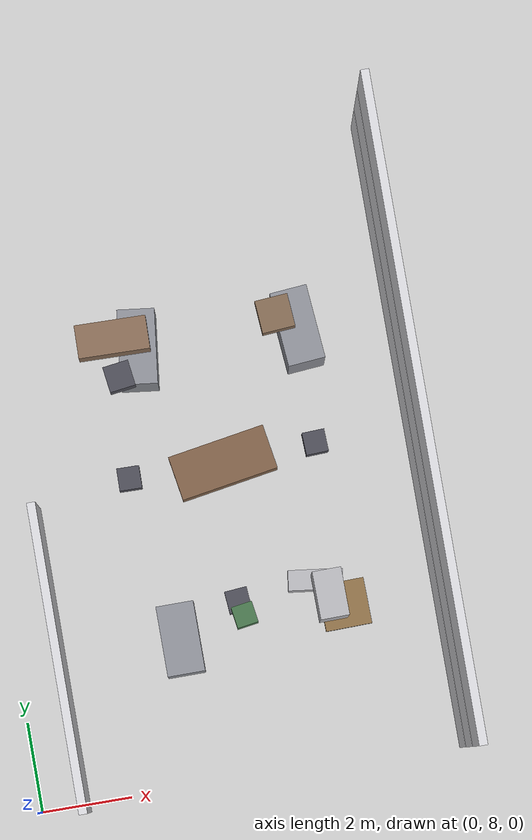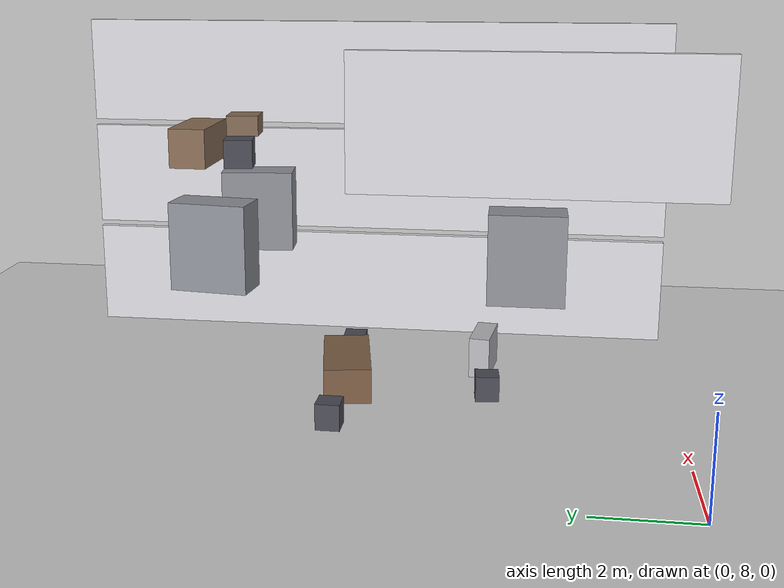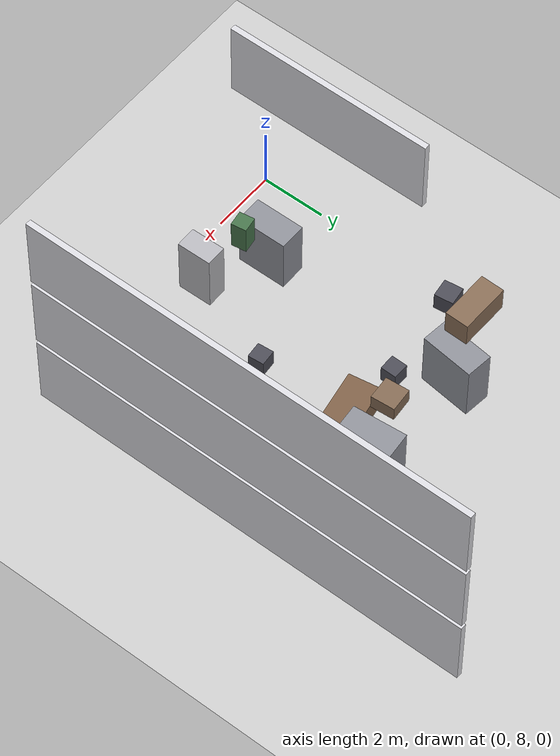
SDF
<sdf version="1.7">
 <world name="generated_world">
  <include><uri>model://sun</uri></include>
  <include><uri>model://ground_plane</uri></include>
  <model name="generated_building">
   <static>true</static>
   <link name="floor_0_room_1_east_wall">
    <pose>9.4100 14.8650 1.2250 0.0000 0.0000 0.0000</pose>
    <collision name="floor_0_room_1_east_wall_collision">
     <geometry><box><size>0.1800 14.0300 2.4500</size></box></geometry>
    </collision>
    <visual name="floor_0_room_1_east_wall_visual">
     <geometry><box><size>0.1800 14.0300 2.4500</size></box></geometry>
     <material><ambient>0.86 0.86 0.88 1</ambient><diffuse>0.86 0.86 0.88 1</diffuse></material>
    </visual>
    <gravity>false</gravity>
   </link>
   <link name="floor_0_room_1_table">
    <pose>5.22760665 14.9086798 0.45 0 0 0.164572695</pose>
    <collision name="floor_0_room_1_table_collision">
     <geometry><box><size>2.2000 1.0000 0.7500</size></box></geometry>
    </collision>
    <visual name="floor_0_room_1_table_visual">
     <geometry><box><size>2.2000 1.0000 0.7500</size></box></geometry>
     <material><ambient>0.50 0.38 0.28 1</ambient><diffuse>0.50 0.38 0.28 1</diffuse></material>
    </visual>
    <gravity>false</gravity>
   </link>
   <link name="floor_0_room_1_chair_south">
    <pose>5.04622161 11.8723677 0.28 0 0 0.085724435</pose>
    <collision name="floor_0_room_1_chair_south_collision">
     <geometry><box><size>0.5000 0.5000 0.5500</size></box></geometry>
    </collision>
    <visual name="floor_0_room_1_chair_south_visual">
     <geometry><box><size>0.5000 0.5000 0.5500</size></box></geometry>
     <material><ambient>0.30 0.30 0.34 1</ambient><diffuse>0.30 0.30 0.34 1</diffuse></material>
    </visual>
    <gravity>false</gravity>
   </link>
   <link name="floor_0_room_1_chair_west">
    <pose>3.13310465 14.9353807 0.28 0 0 1.55535222</pose>
    <collision name="floor_0_room_1_chair_west_collision">
     <geometry><box><size>0.5000 0.5000 0.5500</size></box></geometry>
    </collision>
    <visual name="floor_0_room_1_chair_west_visual">
     <geometry><box><size>0.5000 0.5000 0.5500</size></box></geometry>
     <material><ambient>0.30 0.30 0.34 1</ambient><diffuse>0.30 0.30 0.34 1</diffuse></material>
    </visual>
    <gravity>false</gravity>
   </link>
   <link name="floor_0_room_1_chair_east">
    <pose>7.31700894 15.0322327 0.28 0 0 1.6106433</pose>
    <collision name="floor_0_room_1_chair_east_collision">
     <geometry><box><size>0.5000 0.5000 0.5500</size></box></geometry>
    </collision>
    <visual name="floor_0_room_1_chair_east_visual">
     <geometry><box><size>0.5000 0.5000 0.5500</size></box></geometry>
     <material><ambient>0.30 0.30 0.34 1</ambient><diffuse>0.30 0.30 0.34 1</diffuse></material>
    </visual>
    <gravity>false</gravity>
   </link>
   <link name="floor_0_room_1_credenza">
    <pose>6.79521542 12.0195021 0.45 0 0 -0.123678274</pose>
    <collision name="floor_0_room_1_credenza_collision">
     <geometry><box><size>1.2000 0.4500 0.9000</size></box></geometry>
    </collision>
    <visual name="floor_0_room_1_credenza_visual">
     <geometry><box><size>1.2000 0.4500 0.9000</size></box></geometry>
     <material><ambient>0.72 0.72 0.74 1</ambient><diffuse>0.72 0.72 0.74 1</diffuse></material>
    </visual>
    <gravity>false</gravity>
   </link>
   <link name="floor_1_room_1_east_wall">
    <pose>9.4100 14.8650 3.8250 0.0000 0.0000 0.0000</pose>
    <collision name="floor_1_room_1_east_wall_collision">
     <geometry><box><size>0.1800 14.0300 2.4500</size></box></geometry>
    </collision>
    <visual name="floor_1_room_1_east_wall_visual">
     <geometry><box><size>0.1800 14.0300 2.4500</size></box></geometry>
     <material><ambient>0.86 0.86 0.88 1</ambient><diffuse>0.86 0.86 0.88 1</diffuse></material>
    </visual>
    <gravity>false</gravity>
   </link>
   <link name="floor_1_room_1_rack_a">
    <pose>3.82946663 17.3819103 3.5 0 0 -0.11968903</pose>
    <collision name="floor_1_room_1_rack_a_collision">
     <geometry><box><size>0.8000 1.6000 1.8000</size></box></geometry>
    </collision>
    <visual name="floor_1_room_1_rack_a_visual">
     <geometry><box><size>0.8000 1.6000 1.8000</size></box></geometry>
     <material><ambient>0.56 0.57 0.60 1</ambient><diffuse>0.56 0.57 0.60 1</diffuse></material>
    </visual>
    <gravity>false</gravity>
   </link>
   <link name="floor_1_room_1_rack_b">
    <pose>7.2523439 17.2497554 3.5 0 0 0.0855656485</pose>
    <collision name="floor_1_room_1_rack_b_collision">
     <geometry><box><size>0.8000 1.6000 1.8000</size></box></geometry>
    </collision>
    <visual name="floor_1_room_1_rack_b_visual">
     <geometry><box><size>0.8000 1.6000 1.8000</size></box></geometry>
     <material><ambient>0.56 0.57 0.60 1</ambient><diffuse>0.56 0.57 0.60 1</diffuse></material>
    </visual>
    <gravity>false</gravity>
   </link>
   <link name="floor_1_room_1_rack_c">
    <pose>3.69049441 11.1242345 3.5 0 0 0.00416555285</pose>
    <collision name="floor_1_room_1_rack_c_collision">
     <geometry><box><size>0.8000 1.5000 1.8000</size></box></geometry>
    </collision>
    <visual name="floor_1_room_1_rack_c_visual">
     <geometry><box><size>0.8000 1.5000 1.8000</size></box></geometry>
     <material><ambient>0.56 0.57 0.60 1</ambient><diffuse>0.56 0.57 0.60 1</diffuse></material>
    </visual>
    <gravity>false</gravity>
   </link>
   <link name="floor_1_room_1_pallet">
    <pose>7.27618048 11.3033741 2.72 0 0 0.0203858461</pose>
    <collision name="floor_1_room_1_pallet_collision">
     <geometry><box><size>1.0000 1.0000 0.2400</size></box></geometry>
    </collision>
    <visual name="floor_1_room_1_pallet_visual">
     <geometry><box><size>1.0000 1.0000 0.2400</size></box></geometry>
     <material><ambient>0.56 0.44 0.28 1</ambient><diffuse>0.56 0.44 0.28 1</diffuse></material>
    </visual>
    <gravity>false</gravity>
   </link>
   <link name="floor_2_room_1_corridor_wall_lower">
    <pose>1.1900 11.0575 6.4250 0.0000 0.0000 0.0000</pose>
    <collision name="floor_2_room_1_corridor_wall_lower_collision">
     <geometry><box><size>0.1800 6.4150 2.4500</size></box></geometry>
    </collision>
    <visual name="floor_2_room_1_corridor_wall_lower_visual">
     <geometry><box><size>0.1800 6.4150 2.4500</size></box></geometry>
     <material><ambient>0.86 0.86 0.88 1</ambient><diffuse>0.86 0.86 0.88 1</diffuse></material>
    </visual>
    <gravity>false</gravity>
   </link>
   <link name="floor_2_room_1_east_wall">
    <pose>9.4100 14.8650 6.4250 0.0000 0.0000 0.0000</pose>
    <collision name="floor_2_room_1_east_wall_collision">
     <geometry><box><size>0.1800 14.0300 2.4500</size></box></geometry>
    </collision>
    <visual name="floor_2_room_1_east_wall_visual">
     <geometry><box><size>0.1800 14.0300 2.4500</size></box></geometry>
     <material><ambient>0.86 0.86 0.88 1</ambient><diffuse>0.86 0.86 0.88 1</diffuse></material>
    </visual>
    <gravity>false</gravity>
   </link>
   <link name="floor_2_room_1_desk">
    <pose>3.36069294 17.4970114 5.65 0 0 -0.0182389381</pose>
    <collision name="floor_2_room_1_desk_collision">
     <geometry><box><size>1.5000 0.7000 0.7500</size></box></geometry>
    </collision>
    <visual name="floor_2_room_1_desk_visual">
     <geometry><box><size>1.5000 0.7000 0.7500</size></box></geometry>
     <material><ambient>0.54 0.43 0.34 1</ambient><diffuse>0.54 0.43 0.34 1</diffuse></material>
    </visual>
    <gravity>false</gravity>
   </link>
   <link name="floor_2_room_1_chair">
    <pose>3.36392125 16.6885972 5.48 0 0 0.13398783</pose>
    <collision name="floor_2_room_1_chair_collision">
     <geometry><box><size>0.5500 0.5500 0.5500</size></box></geometry>
    </collision>
    <visual name="floor_2_room_1_chair_visual">
     <geometry><box><size>0.5500 0.5500 0.5500</size></box></geometry>
     <material><ambient>0.30 0.30 0.34 1</ambient><diffuse>0.30 0.30 0.34 1</diffuse></material>
    </visual>
    <gravity>false</gravity>
   </link>
   <link name="floor_2_room_1_cabinet">
    <pose>6.9084945 11.4348397 6.1 0 0 0.0139725611</pose>
    <collision name="floor_2_room_1_cabinet_collision">
     <geometry><box><size>0.6000 1.0000 1.8000</size></box></geometry>
    </collision>
    <visual name="floor_2_room_1_cabinet_visual">
     <geometry><box><size>0.6000 1.0000 1.8000</size></box></geometry>
     <material><ambient>0.72 0.72 0.74 1</ambient><diffuse>0.72 0.72 0.74 1</diffuse></material>
    </visual>
    <gravity>false</gravity>
   </link>
   <link name="floor_2_room_1_side_table">
    <pose>6.79129785 17.4359626 5.52 0 0 0.0755673409</pose>
    <collision name="floor_2_room_1_side_table_collision">
     <geometry><box><size>0.7000 0.7000 0.4500</size></box></geometry>
    </collision>
    <visual name="floor_2_room_1_side_table_visual">
     <geometry><box><size>0.7000 0.7000 0.4500</size></box></geometry>
     <material><ambient>0.52 0.42 0.33 1</ambient><diffuse>0.52 0.42 0.33 1</diffuse></material>
    </visual>
    <gravity>false</gravity>
   </link>
   <link name="floor_2_room_1_planter">
    <pose>5.10110469 11.3330783 5.65 0 0 0.151706316</pose>
    <collision name="floor_2_room_1_planter_collision">
     <geometry><box><size>0.4500 0.4500 0.9000</size></box></geometry>
    </collision>
    <visual name="floor_2_room_1_planter_visual">
     <geometry><box><size>0.4500 0.4500 0.9000</size></box></geometry>
     <material><ambient>0.28 0.46 0.30 1</ambient><diffuse>0.28 0.46 0.30 1</diffuse></material>
    </visual>
    <gravity>false</gravity>
   </link>
  </model>
 </world>
</sdf>
